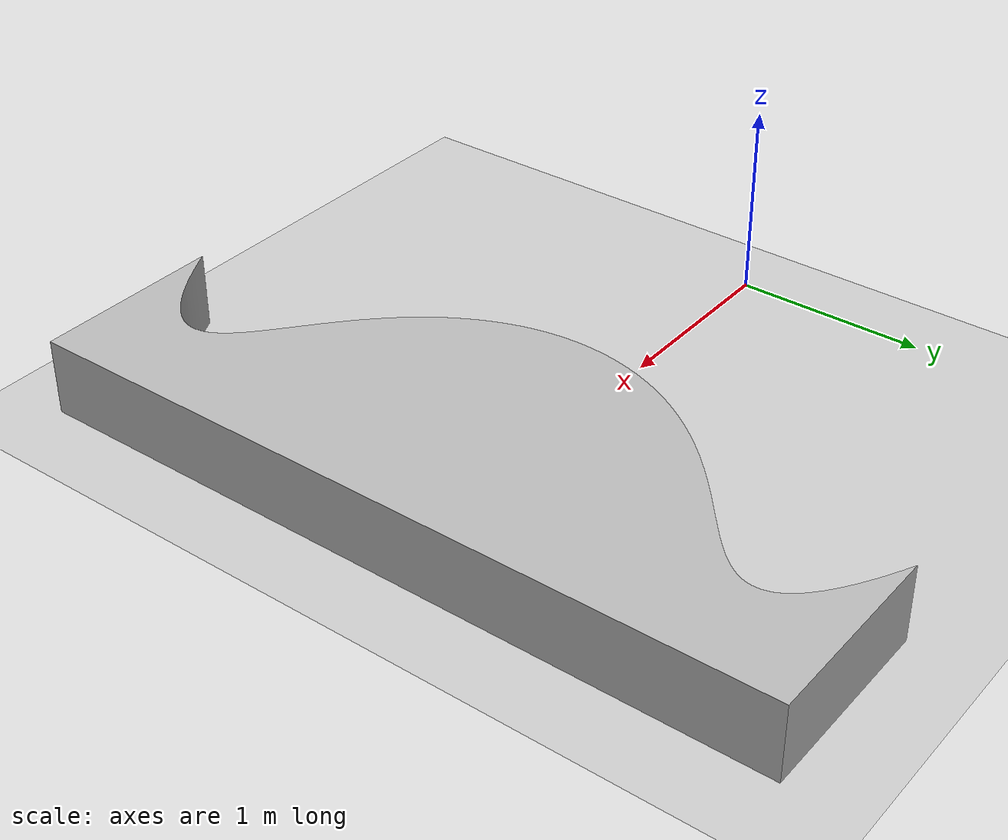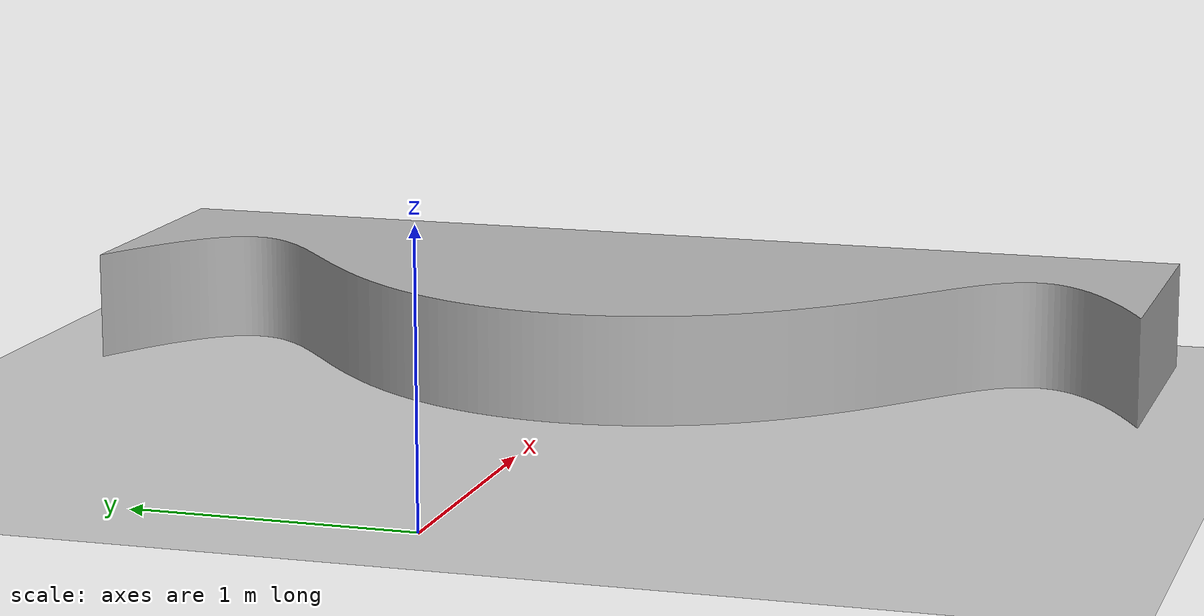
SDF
<?xml version="1.0"?>
<sdf version="1.5">
  <world name="default">
    <!-- A global light source -->
    <include>
      <uri>model://sun</uri>
    </include>
    <!-- A ground plane -->
    <include>
      <uri>model://ground_plane</uri>
    </include>
    <!-- Custom mesh model -->
    <model name="my_mesh">
      <pose>0 0 0 0 0 0</pose>
      <static>true</static>
      <link name="body">
        <!-- Visual element to display the mesh -->
        <visual name="visual">
          <geometry>
            <mesh>
              <uri>file:///home/ruan/dev_ws/src/my_bot/worlds/custom_worlds/Smooth_curve_part.stl</uri>
            </mesh>
          </geometry>
        </visual>
        <!-- Collision element for lidar detection -->
        <collision name="collision">
          <geometry>
            <mesh>
              <uri>file:///home/ruan/dev_ws/src/my_bot/worlds/custom_worlds/Smooth_curve_part.stl</uri>
            </mesh>
          </geometry>
        </collision>
      </link>
    </model>
    <!-- Add the model state publisher plugin -->
    <plugin name="model_state_publisher" filename="libgazebo_ros_state.so">
      <ros>
        <namespace>/</namespace>
      </ros>
    </plugin>
  </world>
</sdf>
